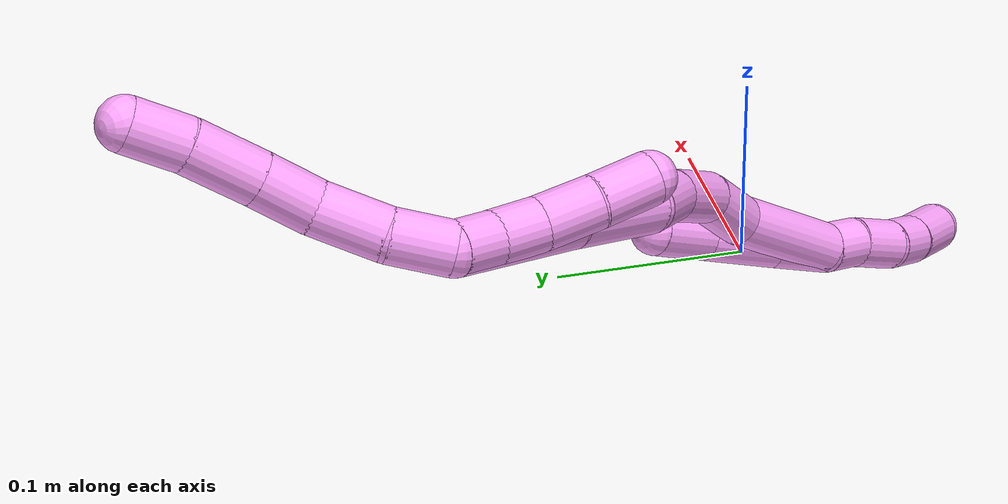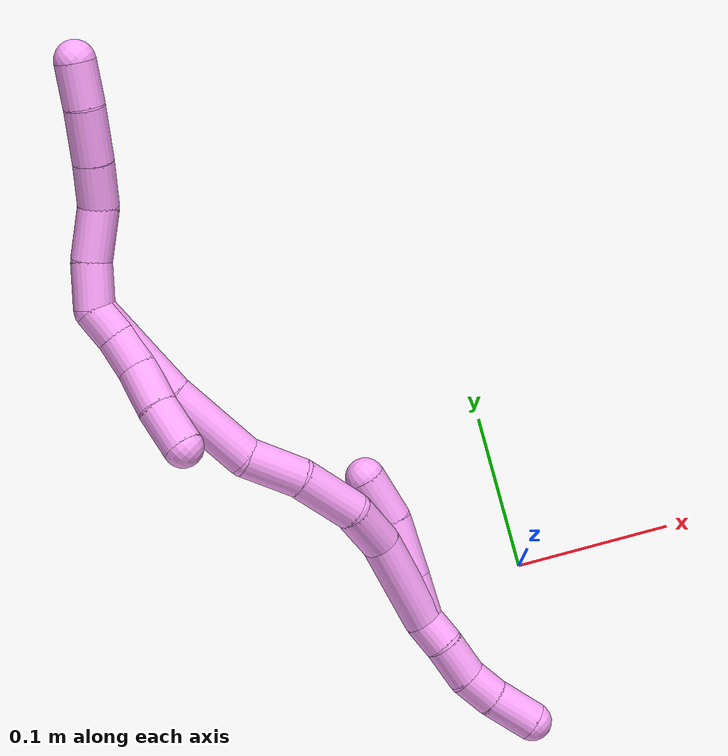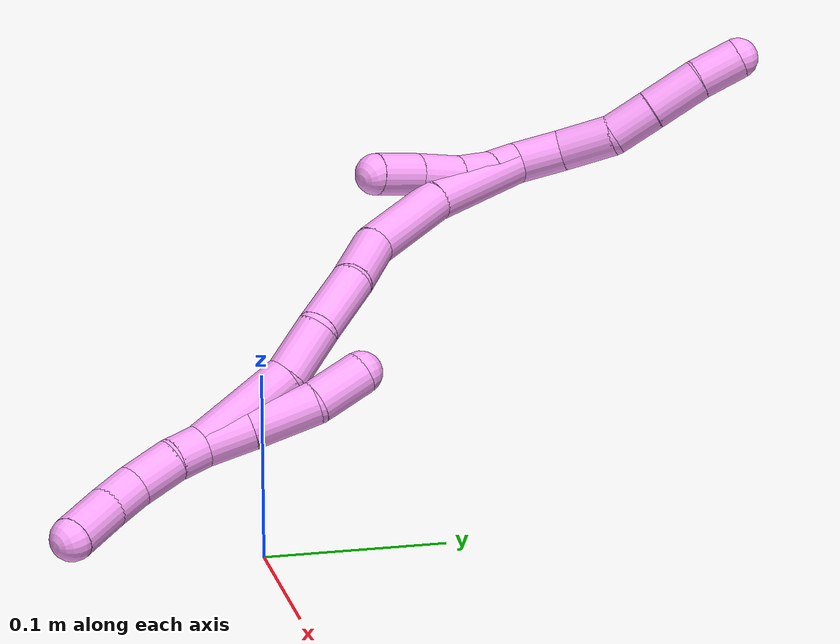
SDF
<sdf version="1.7">
 <world name="default">
  <model name="photoneo_s_sensor">
   <static>1</static>
   <pose>0 0 2 1.57079 1.57079 3.14159</pose>
   <link name="link">
    <inertial><mass>0.1</mass></inertial>
    <sensor name="sensor" type="depth">
     <update_rate>30</update_rate>
     <camera>
      <horizontal_fov>1.22</horizontal_fov>
      <image><width>1920</width><height>1200</height><format>B8G8R8</format></image>
      <clip><near>0.1</near><far>4</far></clip>
      <depth_camera><output>points</output></depth_camera>
     </camera>
     <plugin name="camera_plugin" filename="libgazebo_ros_depth_camera.so">
      <baseline>0.2</baseline>
      <alwaysOn>1</alwaysOn>
      <updateRate>0.0</updateRate>
      <cameraName>camera_ir</cameraName>
      <imageTopicName>/camera/color/image_raw</imageTopicName>
      <cameraInfoTopicName>/camera/color/camera_info</cameraInfoTopicName>
      <depthImageTopicName>/camera/depth/image_raw</depthImageTopicName>
      <depthImageCameraInfoTopicName>/camera/depth/camera_info</depthImageCameraInfoTopicName>
      <pointCloudTopicName>/camera/depth/points</pointCloudTopicName>
      <frameName>fr_optical</frameName>
      <pointCloudCutoff>0.1</pointCloudCutoff>
      <pointCloudCutoffMax>2.0</pointCloudCutoffMax>
      <distortionK1>0</distortionK1>
      <distortionK2>0</distortionK2>
      <distortionK3>0</distortionK3>
      <distortionT1>0</distortionT1>
      <distortionT2>0</distortionT2>
      <CxPrime>0</CxPrime>
      <Cx>0</Cx>
      <Cy>0</Cy>
      <focalLength>0</focalLength>
      <hackBaseline>0</hackBaseline>
     </plugin>
    </sensor>
   </link>
  </model>
  <model name="bin">
   <static>1</static>
   <link name="bottom">
    <collision name="collision-bottom">
     <pose>0 0 -0.01 0 -0 0</pose>
     <geometry><box><size>0.8 0.6 0.02</size></box></geometry>
     <surface>
      <friction><ode><mu>100</mu><mu2>100</mu2></ode></friction>
      <contact><collide_bitmask>65535</collide_bitmask></contact>
     </surface>
    </collision>
   </link>
   <link name="west_wall">
    <collision name="collision-west_wall">
     <pose>-0.41 0 0.1 0 -0 0</pose>
     <geometry><box><size>0.02 0.6 0.2</size></box></geometry>
     <surface>
      <friction><ode><mu>100</mu><mu2>100</mu2></ode></friction>
      <contact><collide_bitmask>65535</collide_bitmask></contact>
     </surface>
    </collision>
   </link>
   <link name="east_wall">
    <collision name="collision-east_wall">
     <pose>0.41 0 0.1 0 -0 0</pose>
     <geometry><box><size>0.02 0.6 0.2</size></box></geometry>
     <surface>
      <friction><ode><mu>100</mu><mu2>100</mu2></ode></friction>
      <contact><collide_bitmask>65535</collide_bitmask></contact>
     </surface>
    </collision>
   </link>
   <link name="south_wall">
    <collision name="collision-south_wall">
     <pose>0 -0.31 0.1 0 -0 0</pose>
     <geometry><box><size>0.8 0.02 0.2</size></box></geometry>
     <surface>
      <friction><ode><mu>100</mu><mu2>100</mu2></ode></friction>
      <contact><collide_bitmask>65535</collide_bitmask></contact>
     </surface>
    </collision>
   </link>
   <link name="north_wall">
    <collision name="collision-north_wall">
     <pose>0 0.31 0.1 0 -0 0</pose>
     <geometry><box><size>0.8 0.02 0.2</size></box></geometry>
     <surface>
      <friction><ode><mu>100</mu><mu2>100</mu2></ode></friction>
      <contact><collide_bitmask>65535</collide_bitmask></contact>
     </surface>
    </collision>
   </link>
  </model>
  <model name="4">
   <static>0</static>
   <link name="4">
    <collision name="collision-cylinder-e_1_2_8">
     <pose>-0.008787 -0.003931 0.010672 0.352949 -0.657804 -0.121577</pose>
     <geometry><cylinder><radius>0.0125</radius><length>0.028744</length></cylinder></geometry>
     <surface>
      <friction><ode><mu>1.16</mu><mu2>1.16</mu2><slip1>0</slip1><slip2>0</slip2></ode></friction>
      <contact><ode><kp>1e+06</kp><kd>1</kd><max_vel>0</max_vel><min_depth>0.001</min_depth></ode></contact>
     </surface>
    </collision>
    <visual name="visual-cylinder-e_1_2_8">
     <pose>-0.008787 -0.003931 0.010672 0.352949 -0.657804 -0.121577</pose>
     <geometry><cylinder><radius>0.0125</radius><length>0.028744</length></cylinder></geometry>
     <material><ambient>1 0.65098 0.996078 1</ambient></material>
    </visual>
    <collision name="collision-cylinder-e_2_8_9">
     <pose>-0.029981 -0.012281 0.031129 0.424187 -0.857465 -0.196219</pose>
     <geometry><cylinder><radius>0.0125</radius><length>0.032816</length></cylinder></geometry>
     <surface>
      <friction><ode><mu>1.16</mu><mu2>1.16</mu2><slip1>0</slip1><slip2>0</slip2></ode></friction>
      <contact><ode><kp>1e+06</kp><kd>1</kd><max_vel>0</max_vel><min_depth>0.001</min_depth></ode></contact>
     </surface>
    </collision>
    <visual name="visual-cylinder-e_2_8_9">
     <pose>-0.029981 -0.012281 0.031129 0.424187 -0.857465 -0.196219</pose>
     <geometry><cylinder><radius>0.0125</radius><length>0.032816</length></cylinder></geometry>
     <material><ambient>1 0.65098 0.996078 1</ambient></material>
    </visual>
    <collision name="collision-cylinder-e_3_9_10">
     <pose>-0.051906 -0.016356 0.050931 -0.034395 -0.759549 0.01373</pose>
     <geometry><cylinder><radius>0.0125</radius><length>0.027645</length></cylinder></geometry>
     <surface>
      <friction><ode><mu>1.16</mu><mu2>1.16</mu2><slip1>0</slip1><slip2>0</slip2></ode></friction>
      <contact><ode><kp>1e+06</kp><kd>1</kd><max_vel>0</max_vel><min_depth>0.001</min_depth></ode></contact>
     </surface>
    </collision>
    <visual name="visual-cylinder-e_3_9_10">
     <pose>-0.051906 -0.016356 0.050931 -0.034395 -0.759549 0.01373</pose>
     <geometry><cylinder><radius>0.0125</radius><length>0.027645</length></cylinder></geometry>
     <material><ambient>1 0.65098 0.996078 1</ambient></material>
    </visual>
    <collision name="collision-cylinder-e_4_10_11">
     <pose>-0.072446 -0.015455 0.073601 -0.043896 -0.716123 0.016428</pose>
     <geometry><cylinder><radius>0.0125</radius><length>0.033578</length></cylinder></geometry>
     <surface>
      <friction><ode><mu>1.16</mu><mu2>1.16</mu2><slip1>0</slip1><slip2>0</slip2></ode></friction>
      <contact><ode><kp>1e+06</kp><kd>1</kd><max_vel>0</max_vel><min_depth>0.001</min_depth></ode></contact>
     </surface>
    </collision>
    <visual name="visual-cylinder-e_4_10_11">
     <pose>-0.072446 -0.015455 0.073601 -0.043896 -0.716123 0.016428</pose>
     <geometry><cylinder><radius>0.0125</radius><length>0.033578</length></cylinder></geometry>
     <material><ambient>1 0.65098 0.996078 1</ambient></material>
    </visual>
    <collision name="collision-cylinder-e_5_11_6">
     <pose>-0.09155 -0.0156 0.09718 0.064054 -0.635931 -0.021089</pose>
     <geometry><cylinder><radius>0.0125</radius><length>0.027218</length></cylinder></geometry>
     <surface>
      <friction><ode><mu>1.16</mu><mu2>1.16</mu2><slip1>0</slip1><slip2>0</slip2></ode></friction>
      <contact><ode><kp>1e+06</kp><kd>1</kd><max_vel>0</max_vel><min_depth>0.001</min_depth></ode></contact>
     </surface>
    </collision>
    <visual name="visual-cylinder-e_5_11_6">
     <pose>-0.09155 -0.0156 0.09718 0.064054 -0.635931 -0.021089</pose>
     <geometry><cylinder><radius>0.0125</radius><length>0.027218</length></cylinder></geometry>
     <material><ambient>1 0.65098 0.996078 1</ambient></material>
    </visual>
    <collision name="collision-cylinder-e_1_2_12">
     <pose>0.000492 0.001132 -0.010411 -3.03328 0.046934 -0.817215</pose>
     <geometry><cylinder><radius>0.0125</radius><length>0.020967</length></cylinder></geometry>
     <surface>
      <friction><ode><mu>1.16</mu><mu2>1.16</mu2><slip1>0</slip1><slip2>0</slip2></ode></friction>
      <contact><ode><kp>1e+06</kp><kd>1</kd><max_vel>0</max_vel><min_depth>0.001</min_depth></ode></contact>
     </surface>
    </collision>
    <visual name="visual-cylinder-e_1_2_12">
     <pose>0.000492 0.001132 -0.010411 -3.03328 0.046934 -0.817215</pose>
     <geometry><cylinder><radius>0.0125</radius><length>0.020967</length></cylinder></geometry>
     <material><ambient>1 0.65098 0.996078 1</ambient></material>
    </visual>
    <collision name="collision-cylinder-e_2_12_13">
     <pose>0.001985 0.005463 -0.031895 -2.86037 0.086656 -0.594443</pose>
     <geometry><cylinder><radius>0.0125</radius><length>0.023138</length></cylinder></geometry>
     <surface>
      <friction><ode><mu>1.16</mu><mu2>1.16</mu2><slip1>0</slip1><slip2>0</slip2></ode></friction>
      <contact><ode><kp>1e+06</kp><kd>1</kd><max_vel>0</max_vel><min_depth>0.001</min_depth></ode></contact>
     </surface>
    </collision>
    <visual name="visual-cylinder-e_2_12_13">
     <pose>0.001985 0.005463 -0.031895 -2.86037 0.086656 -0.594443</pose>
     <geometry><cylinder><radius>0.0125</radius><length>0.023138</length></cylinder></geometry>
     <material><ambient>1 0.65098 0.996078 1</ambient></material>
    </visual>
    <collision name="collision-cylinder-e_3_13_14">
     <pose>0.004091 0.014857 -0.055277 -2.6753 0.080005 -0.333957</pose>
     <geometry><cylinder><radius>0.0125</radius><length>0.027649</length></cylinder></geometry>
     <surface>
      <friction><ode><mu>1.16</mu><mu2>1.16</mu2><slip1>0</slip1><slip2>0</slip2></ode></friction>
      <contact><ode><kp>1e+06</kp><kd>1</kd><max_vel>0</max_vel><min_depth>0.001</min_depth></ode></contact>
     </surface>
    </collision>
    <visual name="visual-cylinder-e_3_13_14">
     <pose>0.004091 0.014857 -0.055277 -2.6753 0.080005 -0.333957</pose>
     <geometry><cylinder><radius>0.0125</radius><length>0.027649</length></cylinder></geometry>
     <material><ambient>1 0.65098 0.996078 1</ambient></material>
    </visual>
    <collision name="collision-cylinder-e_4_14_5">
     <pose>0.005441 0.0263 -0.080695 -2.76079 0.017351 -0.089967</pose>
     <geometry><cylinder><radius>0.0125</radius><length>0.028245</length></cylinder></geometry>
     <surface>
      <friction><ode><mu>1.16</mu><mu2>1.16</mu2><slip1>0</slip1><slip2>0</slip2></ode></friction>
      <contact><ode><kp>1e+06</kp><kd>1</kd><max_vel>0</max_vel><min_depth>0.001</min_depth></ode></contact>
     </surface>
    </collision>
    <visual name="visual-cylinder-e_4_14_5">
     <pose>0.005441 0.0263 -0.080695 -2.76079 0.017351 -0.089967</pose>
     <geometry><cylinder><radius>0.0125</radius><length>0.028245</length></cylinder></geometry>
     <material><ambient>1 0.65098 0.996078 1</ambient></material>
    </visual>
    <collision name="collision-cylinder-e_1_2_15">
     <pose>0.001472 0.000804 -0.034224 -3.1181 0.042984 -2.14121</pose>
     <geometry><cylinder><radius>0.0125</radius><length>0.06853</length></cylinder></geometry>
     <surface>
      <friction><ode><mu>1.16</mu><mu2>1.16</mu2><slip1>0</slip1><slip2>0</slip2></ode></friction>
      <contact><ode><kp>1e+06</kp><kd>1</kd><max_vel>0</max_vel><min_depth>0.001</min_depth></ode></contact>
     </surface>
    </collision>
    <visual name="visual-cylinder-e_1_2_15">
     <pose>0.001472 0.000804 -0.034224 -3.1181 0.042984 -2.14121</pose>
     <geometry><cylinder><radius>0.0125</radius><length>0.06853</length></cylinder></geometry>
     <material><ambient>1 0.65098 0.996078 1</ambient></material>
    </visual>
    <collision name="collision-cylinder-e_2_15_16">
     <pose>0.00294 -0.002412 -0.097101 3.00219 -0.000151 -0.002168</pose>
     <geometry><cylinder><radius>0.0125</radius><length>0.057867</length></cylinder></geometry>
     <surface>
      <friction><ode><mu>1.16</mu><mu2>1.16</mu2><slip1>0</slip1><slip2>0</slip2></ode></friction>
      <contact><ode><kp>1e+06</kp><kd>1</kd><max_vel>0</max_vel><min_depth>0.001</min_depth></ode></contact>
     </surface>
    </collision>
    <visual name="visual-cylinder-e_2_15_16">
     <pose>0.00294 -0.002412 -0.097101 3.00219 -0.000151 -0.002168</pose>
     <geometry><cylinder><radius>0.0125</radius><length>0.057867</length></cylinder></geometry>
     <material><ambient>1 0.65098 0.996078 1</ambient></material>
    </visual>
    <collision name="collision-cylinder-e_3_16_17">
     <pose>-0.00133 -0.013373 -0.142373 2.74599 -0.232595 -1.05549</pose>
     <geometry><cylinder><radius>0.0125</radius><length>0.037018</length></cylinder></geometry>
     <surface>
      <friction><ode><mu>1.16</mu><mu2>1.16</mu2><slip1>0</slip1><slip2>0</slip2></ode></friction>
      <contact><ode><kp>1e+06</kp><kd>1</kd><max_vel>0</max_vel><min_depth>0.001</min_depth></ode></contact>
     </surface>
    </collision>
    <visual name="visual-cylinder-e_3_16_17">
     <pose>-0.00133 -0.013373 -0.142373 2.74599 -0.232595 -1.05549</pose>
     <geometry><cylinder><radius>0.0125</radius><length>0.037018</length></cylinder></geometry>
     <material><ambient>1 0.65098 0.996078 1</ambient></material>
    </visual>
    <collision name="collision-cylinder-e_4_17_18">
     <pose>-0.005914 -0.027971 -0.17813 2.76098 -0.015389 -0.079847</pose>
     <geometry><cylinder><radius>0.0125</radius><length>0.041229</length></cylinder></geometry>
     <surface>
      <friction><ode><mu>1.16</mu><mu2>1.16</mu2><slip1>0</slip1><slip2>0</slip2></ode></friction>
      <contact><ode><kp>1e+06</kp><kd>1</kd><max_vel>0</max_vel><min_depth>0.001</min_depth></ode></contact>
     </surface>
    </collision>
    <visual name="visual-cylinder-e_4_17_18">
     <pose>-0.005914 -0.027971 -0.17813 2.76098 -0.015389 -0.079847</pose>
     <geometry><cylinder><radius>0.0125</radius><length>0.041229</length></cylinder></geometry>
     <material><ambient>1 0.65098 0.996078 1</ambient></material>
    </visual>
    <collision name="collision-cylinder-e_5_18_19">
     <pose>-0.001154 -0.04289 -0.211343 2.66532 0.310194 1.14444</pose>
     <geometry><cylinder><radius>0.0125</radius><length>0.033265</length></cylinder></geometry>
     <surface>
      <friction><ode><mu>1.16</mu><mu2>1.16</mu2><slip1>0</slip1><slip2>0</slip2></ode></friction>
      <contact><ode><kp>1e+06</kp><kd>1</kd><max_vel>0</max_vel><min_depth>0.001</min_depth></ode></contact>
     </surface>
    </collision>
    <visual name="visual-cylinder-e_5_18_19">
     <pose>-0.001154 -0.04289 -0.211343 2.66532 0.310194 1.14444</pose>
     <geometry><cylinder><radius>0.0125</radius><length>0.033265</length></cylinder></geometry>
     <material><ambient>1 0.65098 0.996078 1</ambient></material>
    </visual>
    <collision name="collision-cylinder-e_6_19_1">
     <pose>0.015734 -0.055204 -0.253682 2.96468 0.390285 2.29807</pose>
     <geometry><cylinder><radius>0.0125</radius><length>0.06209</length></cylinder></geometry>
     <surface>
      <friction><ode><mu>1.16</mu><mu2>1.16</mu2><slip1>0</slip1><slip2>0</slip2></ode></friction>
      <contact><ode><kp>1e+06</kp><kd>1</kd><max_vel>0</max_vel><min_depth>0.001</min_depth></ode></contact>
     </surface>
    </collision>
    <visual name="visual-cylinder-e_6_19_1">
     <pose>0.015734 -0.055204 -0.253682 2.96468 0.390285 2.29807</pose>
     <geometry><cylinder><radius>0.0125</radius><length>0.06209</length></cylinder></geometry>
     <material><ambient>1 0.65098 0.996078 1</ambient></material>
    </visual>
    <collision name="collision-cylinder-e_1_1_20">
     <pose>0.028441 -0.059897 -0.291955 -3.10571 0.089213 -2.37723</pose>
     <geometry><cylinder><radius>0.0125</radius><length>0.020116</length></cylinder></geometry>
     <surface>
      <friction><ode><mu>1.16</mu><mu2>1.16</mu2><slip1>0</slip1><slip2>0</slip2></ode></friction>
      <contact><ode><kp>1e+06</kp><kd>1</kd><max_vel>0</max_vel><min_depth>0.001</min_depth></ode></contact>
     </surface>
    </collision>
    <visual name="visual-cylinder-e_1_1_20">
     <pose>0.028441 -0.059897 -0.291955 -3.10571 0.089213 -2.37723</pose>
     <geometry><cylinder><radius>0.0125</radius><length>0.020116</length></cylinder></geometry>
     <material><ambient>1 0.65098 0.996078 1</ambient></material>
    </visual>
    <collision name="collision-cylinder-e_2_20_21">
     <pose>0.032455 -0.060623 -0.314984 3.0584 0.234305 2.46178</pose>
     <geometry><cylinder><radius>0.0125</radius><length>0.026859</length></cylinder></geometry>
     <surface>
      <friction><ode><mu>1.16</mu><mu2>1.16</mu2><slip1>0</slip1><slip2>0</slip2></ode></friction>
      <contact><ode><kp>1e+06</kp><kd>1</kd><max_vel>0</max_vel><min_depth>0.001</min_depth></ode></contact>
     </surface>
    </collision>
    <visual name="visual-cylinder-e_2_20_21">
     <pose>0.032455 -0.060623 -0.314984 3.0584 0.234305 2.46178</pose>
     <geometry><cylinder><radius>0.0125</radius><length>0.026859</length></cylinder></geometry>
     <material><ambient>1 0.65098 0.996078 1</ambient></material>
    </visual>
    <collision name="collision-cylinder-e_3_21_22">
     <pose>0.035403 -0.063555 -0.33893 2.97425 -0.01536 -0.18265</pose>
     <geometry><cylinder><radius>0.0125</radius><length>0.022169</length></cylinder></geometry>
     <surface>
      <friction><ode><mu>1.16</mu><mu2>1.16</mu2><slip1>0</slip1><slip2>0</slip2></ode></friction>
      <contact><ode><kp>1e+06</kp><kd>1</kd><max_vel>0</max_vel><min_depth>0.001</min_depth></ode></contact>
     </surface>
    </collision>
    <visual name="visual-cylinder-e_3_21_22">
     <pose>0.035403 -0.063555 -0.33893 2.97425 -0.01536 -0.18265</pose>
     <geometry><cylinder><radius>0.0125</radius><length>0.022169</length></cylinder></geometry>
     <material><ambient>1 0.65098 0.996078 1</ambient></material>
    </visual>
    <collision name="collision-cylinder-e_4_22_4">
     <pose>0.032999 -0.068324 -0.364841 2.9489 -0.145285 -1.29078</pose>
     <geometry><cylinder><radius>0.0125</radius><length>0.030856</length></cylinder></geometry>
     <surface>
      <friction><ode><mu>1.16</mu><mu2>1.16</mu2><slip1>0</slip1><slip2>0</slip2></ode></friction>
      <contact><ode><kp>1e+06</kp><kd>1</kd><max_vel>0</max_vel><min_depth>0.001</min_depth></ode></contact>
     </surface>
    </collision>
    <visual name="visual-cylinder-e_4_22_4">
     <pose>0.032999 -0.068324 -0.364841 2.9489 -0.145285 -1.29078</pose>
     <geometry><cylinder><radius>0.0125</radius><length>0.030856</length></cylinder></geometry>
     <material><ambient>1 0.65098 0.996078 1</ambient></material>
    </visual>
    <collision name="collision-cylinder-e_1_1_23">
     <pose>0.021334 -0.062774 -0.269229 0.195423 -0.446853 -0.044539</pose>
     <geometry><cylinder><radius>0.0125</radius><length>0.028747</length></cylinder></geometry>
     <surface>
      <friction><ode><mu>1.16</mu><mu2>1.16</mu2><slip1>0</slip1><slip2>0</slip2></ode></friction>
      <contact><ode><kp>1e+06</kp><kd>1</kd><max_vel>0</max_vel><min_depth>0.001</min_depth></ode></contact>
     </surface>
    </collision>
    <visual name="visual-cylinder-e_1_1_23">
     <pose>0.021334 -0.062774 -0.269229 0.195423 -0.446853 -0.044539</pose>
     <geometry><cylinder><radius>0.0125</radius><length>0.028747</length></cylinder></geometry>
     <material><ambient>1 0.65098 0.996078 1</ambient></material>
    </visual>
    <collision name="collision-cylinder-e_2_23_24">
     <pose>0.006785 -0.068237 -0.239308 0.169585 -0.445631 -0.038512</pose>
     <geometry><cylinder><radius>0.0125</radius><length>0.038688</length></cylinder></geometry>
     <surface>
      <friction><ode><mu>1.16</mu><mu2>1.16</mu2><slip1>0</slip1><slip2>0</slip2></ode></friction>
      <contact><ode><kp>1e+06</kp><kd>1</kd><max_vel>0</max_vel><min_depth>0.001</min_depth></ode></contact>
     </surface>
    </collision>
    <visual name="visual-cylinder-e_2_23_24">
     <pose>0.006785 -0.068237 -0.239308 0.169585 -0.445631 -0.038512</pose>
     <geometry><cylinder><radius>0.0125</radius><length>0.038688</length></cylinder></geometry>
     <material><ambient>1 0.65098 0.996078 1</ambient></material>
    </visual>
    <collision name="collision-cylinder-e_3_24_3">
     <pose>-0.006159 -0.070198 -0.206517 -0.063072 -0.286768 0.009109</pose>
     <geometry><cylinder><radius>0.0125</radius><length>0.032564</length></cylinder></geometry>
     <surface>
      <friction><ode><mu>1.16</mu><mu2>1.16</mu2><slip1>0</slip1><slip2>0</slip2></ode></friction>
      <contact><ode><kp>1e+06</kp><kd>1</kd><max_vel>0</max_vel><min_depth>0.001</min_depth></ode></contact>
     </surface>
    </collision>
    <visual name="visual-cylinder-e_3_24_3">
     <pose>-0.006159 -0.070198 -0.206517 -0.063072 -0.286768 0.009109</pose>
     <geometry><cylinder><radius>0.0125</radius><length>0.032564</length></cylinder></geometry>
     <material><ambient>1 0.65098 0.996078 1</ambient></material>
    </visual>
    <collision name="collision-sphere-3">
     <pose>-0.010764 -0.069214 -0.190931 0 -0 0</pose>
     <geometry><sphere><radius>0.0125</radius></sphere></geometry>
     <surface>
      <friction><ode><mu>1.16</mu><mu2>1.16</mu2><slip1>0</slip1><slip2>0</slip2></ode></friction>
      <contact><ode><kp>1e+06</kp><kd>1</kd><max_vel>0</max_vel><min_depth>0.001</min_depth></ode></contact>
     </surface>
    </collision>
    <visual name="visual-sphere-3">
     <pose>-0.010764 -0.069214 -0.190931 0 -0 0</pose>
     <geometry><sphere><radius>0.0125</radius></sphere></geometry>
     <material><ambient>1 0.65098 0.996078 1</ambient></material>
    </visual>
    <collision name="collision-sphere-24">
     <pose>-0.001553 -0.071183 -0.222104 0 -0 0</pose>
     <geometry><sphere><radius>0.0125</radius></sphere></geometry>
     <surface>
      <friction><ode><mu>1.16</mu><mu2>1.16</mu2><slip1>0</slip1><slip2>0</slip2></ode></friction>
      <contact><ode><kp>1e+06</kp><kd>1</kd><max_vel>0</max_vel><min_depth>0.001</min_depth></ode></contact>
     </surface>
    </collision>
    <visual name="visual-sphere-24">
     <pose>-0.001553 -0.071183 -0.222104 0 -0 0</pose>
     <geometry><sphere><radius>0.0125</radius></sphere></geometry>
     <material><ambient>1 0.65098 0.996078 1</ambient></material>
    </visual>
    <collision name="collision-sphere-23">
     <pose>0.015123 -0.065291 -0.256513 0 -0 0</pose>
     <geometry><sphere><radius>0.0125</radius></sphere></geometry>
     <surface>
      <friction><ode><mu>1.16</mu><mu2>1.16</mu2><slip1>0</slip1><slip2>0</slip2></ode></friction>
      <contact><ode><kp>1e+06</kp><kd>1</kd><max_vel>0</max_vel><min_depth>0.001</min_depth></ode></contact>
     </surface>
    </collision>
    <visual name="visual-sphere-23">
     <pose>0.015123 -0.065291 -0.256513 0 -0 0</pose>
     <geometry><sphere><radius>0.0125</radius></sphere></geometry>
     <material><ambient>1 0.65098 0.996078 1</ambient></material>
    </visual>
    <collision name="collision-sphere-4">
     <pose>0.030765 -0.071248 -0.379825 0 -0 0</pose>
     <geometry><sphere><radius>0.0125</radius></sphere></geometry>
     <surface>
      <friction><ode><mu>1.16</mu><mu2>1.16</mu2><slip1>0</slip1><slip2>0</slip2></ode></friction>
      <contact><ode><kp>1e+06</kp><kd>1</kd><max_vel>0</max_vel><min_depth>0.001</min_depth></ode></contact>
     </surface>
    </collision>
    <visual name="visual-sphere-4">
     <pose>0.030765 -0.071248 -0.379825 0 -0 0</pose>
     <geometry><sphere><radius>0.0125</radius></sphere></geometry>
     <material><ambient>1 0.65098 0.996078 1</ambient></material>
    </visual>
    <collision name="collision-sphere-22">
     <pose>0.035233 -0.065401 -0.349858 0 -0 0</pose>
     <geometry><sphere><radius>0.0125</radius></sphere></geometry>
     <surface>
      <friction><ode><mu>1.16</mu><mu2>1.16</mu2><slip1>0</slip1><slip2>0</slip2></ode></friction>
      <contact><ode><kp>1e+06</kp><kd>1</kd><max_vel>0</max_vel><min_depth>0.001</min_depth></ode></contact>
     </surface>
    </collision>
    <visual name="visual-sphere-22">
     <pose>0.035233 -0.065401 -0.349858 0 -0 0</pose>
     <geometry><sphere><radius>0.0125</radius></sphere></geometry>
     <material><ambient>1 0.65098 0.996078 1</ambient></material>
    </visual>
    <collision name="collision-sphere-21">
     <pose>0.035573 -0.061709 -0.328001 0 -0 0</pose>
     <geometry><sphere><radius>0.0125</radius></sphere></geometry>
     <surface>
      <friction><ode><mu>1.16</mu><mu2>1.16</mu2><slip1>0</slip1><slip2>0</slip2></ode></friction>
      <contact><ode><kp>1e+06</kp><kd>1</kd><max_vel>0</max_vel><min_depth>0.001</min_depth></ode></contact>
     </surface>
    </collision>
    <visual name="visual-sphere-21">
     <pose>0.035573 -0.061709 -0.328001 0 -0 0</pose>
     <geometry><sphere><radius>0.0125</radius></sphere></geometry>
     <material><ambient>1 0.65098 0.996078 1</ambient></material>
    </visual>
    <collision name="collision-sphere-20">
     <pose>0.029337 -0.059538 -0.301967 0 -0 0</pose>
     <geometry><sphere><radius>0.0125</radius></sphere></geometry>
     <surface>
      <friction><ode><mu>1.16</mu><mu2>1.16</mu2><slip1>0</slip1><slip2>0</slip2></ode></friction>
      <contact><ode><kp>1e+06</kp><kd>1</kd><max_vel>0</max_vel><min_depth>0.001</min_depth></ode></contact>
     </surface>
    </collision>
    <visual name="visual-sphere-20">
     <pose>0.029337 -0.059538 -0.301967 0 -0 0</pose>
     <geometry><sphere><radius>0.0125</radius></sphere></geometry>
     <material><ambient>1 0.65098 0.996078 1</ambient></material>
    </visual>
    <collision name="collision-sphere-6">
     <pose>-0.099632 -0.016301 0.108106 0 -0 0</pose>
     <geometry><sphere><radius>0.0125</radius></sphere></geometry>
     <surface>
      <friction><ode><mu>1.16</mu><mu2>1.16</mu2><slip1>0</slip1><slip2>0</slip2></ode></friction>
      <contact><ode><kp>1e+06</kp><kd>1</kd><max_vel>0</max_vel><min_depth>0.001</min_depth></ode></contact>
     </surface>
    </collision>
    <visual name="visual-sphere-6">
     <pose>-0.099632 -0.016301 0.108106 0 -0 0</pose>
     <geometry><sphere><radius>0.0125</radius></sphere></geometry>
     <material><ambient>1 0.65098 0.996078 1</ambient></material>
    </visual>
    <collision name="collision-sphere-11">
     <pose>-0.083467 -0.0149 0.086254 0 -0 0</pose>
     <geometry><sphere><radius>0.0125</radius></sphere></geometry>
     <surface>
      <friction><ode><mu>1.16</mu><mu2>1.16</mu2><slip1>0</slip1><slip2>0</slip2></ode></friction>
      <contact><ode><kp>1e+06</kp><kd>1</kd><max_vel>0</max_vel><min_depth>0.001</min_depth></ode></contact>
     </surface>
    </collision>
    <visual name="visual-sphere-11">
     <pose>-0.083467 -0.0149 0.086254 0 -0 0</pose>
     <geometry><sphere><radius>0.0125</radius></sphere></geometry>
     <material><ambient>1 0.65098 0.996078 1</ambient></material>
    </visual>
    <collision name="collision-sphere-10">
     <pose>-0.061425 -0.016011 0.060949 0 -0 0</pose>
     <geometry><sphere><radius>0.0125</radius></sphere></geometry>
     <surface>
      <friction><ode><mu>1.16</mu><mu2>1.16</mu2><slip1>0</slip1><slip2>0</slip2></ode></friction>
      <contact><ode><kp>1e+06</kp><kd>1</kd><max_vel>0</max_vel><min_depth>0.001</min_depth></ode></contact>
     </surface>
    </collision>
    <visual name="visual-sphere-10">
     <pose>-0.061425 -0.016011 0.060949 0 -0 0</pose>
     <geometry><sphere><radius>0.0125</radius></sphere></geometry>
     <material><ambient>1 0.65098 0.996078 1</ambient></material>
    </visual>
    <collision name="collision-sphere-9">
     <pose>-0.042388 -0.0167 0.040914 0 -0 0</pose>
     <geometry><sphere><radius>0.0125</radius></sphere></geometry>
     <surface>
      <friction><ode><mu>1.16</mu><mu2>1.16</mu2><slip1>0</slip1><slip2>0</slip2></ode></friction>
      <contact><ode><kp>1e+06</kp><kd>1</kd><max_vel>0</max_vel><min_depth>0.001</min_depth></ode></contact>
     </surface>
    </collision>
    <visual name="visual-sphere-9">
     <pose>-0.042388 -0.0167 0.040914 0 -0 0</pose>
     <geometry><sphere><radius>0.0125</radius></sphere></geometry>
     <material><ambient>1 0.65098 0.996078 1</ambient></material>
    </visual>
    <collision name="collision-sphere-2">
     <geometry><sphere><radius>0.0125</radius></sphere></geometry>
     <surface>
      <friction><ode><mu>1.16</mu><mu2>1.16</mu2><slip1>0</slip1><slip2>0</slip2></ode></friction>
      <contact><ode><kp>1e+06</kp><kd>1</kd><max_vel>0</max_vel><min_depth>0.001</min_depth></ode></contact>
     </surface>
    </collision>
    <visual name="visual-sphere-2">
     <geometry><sphere><radius>0.0125</radius></sphere></geometry>
     <material><ambient>1 0.65098 0.996078 1</ambient></material>
    </visual>
    <collision name="collision-sphere-19">
     <pose>0.003923 -0.050151 -0.22542 0 -0 0</pose>
     <geometry><sphere><radius>0.0125</radius></sphere></geometry>
     <surface>
      <friction><ode><mu>1.16</mu><mu2>1.16</mu2><slip1>0</slip1><slip2>0</slip2></ode></friction>
      <contact><ode><kp>1e+06</kp><kd>1</kd><max_vel>0</max_vel><min_depth>0.001</min_depth></ode></contact>
     </surface>
    </collision>
    <visual name="visual-sphere-19">
     <pose>0.003923 -0.050151 -0.22542 0 -0 0</pose>
     <geometry><sphere><radius>0.0125</radius></sphere></geometry>
     <material><ambient>1 0.65098 0.996078 1</ambient></material>
    </visual>
    <collision name="collision-sphere-8">
     <pose>-0.017573 -0.007863 0.021344 0 -0 0</pose>
     <geometry><sphere><radius>0.0125</radius></sphere></geometry>
     <surface>
      <friction><ode><mu>1.16</mu><mu2>1.16</mu2><slip1>0</slip1><slip2>0</slip2></ode></friction>
      <contact><ode><kp>1e+06</kp><kd>1</kd><max_vel>0</max_vel><min_depth>0.001</min_depth></ode></contact>
     </surface>
    </collision>
    <visual name="visual-sphere-8">
     <pose>-0.017573 -0.007863 0.021344 0 -0 0</pose>
     <geometry><sphere><radius>0.0125</radius></sphere></geometry>
     <material><ambient>1 0.65098 0.996078 1</ambient></material>
    </visual>
    <collision name="collision-sphere-12">
     <pose>0.000984 0.002264 -0.020822 0 -0 0</pose>
     <geometry><sphere><radius>0.0125</radius></sphere></geometry>
     <surface>
      <friction><ode><mu>1.16</mu><mu2>1.16</mu2><slip1>0</slip1><slip2>0</slip2></ode></friction>
      <contact><ode><kp>1e+06</kp><kd>1</kd><max_vel>0</max_vel><min_depth>0.001</min_depth></ode></contact>
     </surface>
    </collision>
    <visual name="visual-sphere-12">
     <pose>0.000984 0.002264 -0.020822 0 -0 0</pose>
     <geometry><sphere><radius>0.0125</radius></sphere></geometry>
     <material><ambient>1 0.65098 0.996078 1</ambient></material>
    </visual>
    <collision name="collision-sphere-13">
     <pose>0.002986 0.008662 -0.042968 0 -0 0</pose>
     <geometry><sphere><radius>0.0125</radius></sphere></geometry>
     <surface>
      <friction><ode><mu>1.16</mu><mu2>1.16</mu2><slip1>0</slip1><slip2>0</slip2></ode></friction>
      <contact><ode><kp>1e+06</kp><kd>1</kd><max_vel>0</max_vel><min_depth>0.001</min_depth></ode></contact>
     </surface>
    </collision>
    <visual name="visual-sphere-13">
     <pose>0.002986 0.008662 -0.042968 0 -0 0</pose>
     <geometry><sphere><radius>0.0125</radius></sphere></geometry>
     <material><ambient>1 0.65098 0.996078 1</ambient></material>
    </visual>
    <collision name="collision-sphere-14">
     <pose>0.005196 0.021052 -0.067586 0 -0 0</pose>
     <geometry><sphere><radius>0.0125</radius></sphere></geometry>
     <surface>
      <friction><ode><mu>1.16</mu><mu2>1.16</mu2><slip1>0</slip1><slip2>0</slip2></ode></friction>
      <contact><ode><kp>1e+06</kp><kd>1</kd><max_vel>0</max_vel><min_depth>0.001</min_depth></ode></contact>
     </surface>
    </collision>
    <visual name="visual-sphere-14">
     <pose>0.005196 0.021052 -0.067586 0 -0 0</pose>
     <geometry><sphere><radius>0.0125</radius></sphere></geometry>
     <material><ambient>1 0.65098 0.996078 1</ambient></material>
    </visual>
    <collision name="collision-sphere-5">
     <pose>0.005686 0.031548 -0.093804 0 -0 0</pose>
     <geometry><sphere><radius>0.0125</radius></sphere></geometry>
     <surface>
      <friction><ode><mu>1.16</mu><mu2>1.16</mu2><slip1>0</slip1><slip2>0</slip2></ode></friction>
      <contact><ode><kp>1e+06</kp><kd>1</kd><max_vel>0</max_vel><min_depth>0.001</min_depth></ode></contact>
     </surface>
    </collision>
    <visual name="visual-sphere-5">
     <pose>0.005686 0.031548 -0.093804 0 -0 0</pose>
     <geometry><sphere><radius>0.0125</radius></sphere></geometry>
     <material><ambient>1 0.65098 0.996078 1</ambient></material>
    </visual>
    <collision name="collision-sphere-15">
     <pose>0.002945 0.001609 -0.068448 0 -0 0</pose>
     <geometry><sphere><radius>0.0125</radius></sphere></geometry>
     <surface>
      <friction><ode><mu>1.16</mu><mu2>1.16</mu2><slip1>0</slip1><slip2>0</slip2></ode></friction>
      <contact><ode><kp>1e+06</kp><kd>1</kd><max_vel>0</max_vel><min_depth>0.001</min_depth></ode></contact>
     </surface>
    </collision>
    <visual name="visual-sphere-15">
     <pose>0.002945 0.001609 -0.068448 0 -0 0</pose>
     <geometry><sphere><radius>0.0125</radius></sphere></geometry>
     <material><ambient>1 0.65098 0.996078 1</ambient></material>
    </visual>
    <collision name="collision-sphere-16">
     <pose>0.002936 -0.006432 -0.125754 0 -0 0</pose>
     <geometry><sphere><radius>0.0125</radius></sphere></geometry>
     <surface>
      <friction><ode><mu>1.16</mu><mu2>1.16</mu2><slip1>0</slip1><slip2>0</slip2></ode></friction>
      <contact><ode><kp>1e+06</kp><kd>1</kd><max_vel>0</max_vel><min_depth>0.001</min_depth></ode></contact>
     </surface>
    </collision>
    <visual name="visual-sphere-16">
     <pose>0.002936 -0.006432 -0.125754 0 -0 0</pose>
     <geometry><sphere><radius>0.0125</radius></sphere></geometry>
     <material><ambient>1 0.65098 0.996078 1</ambient></material>
    </visual>
    <collision name="collision-sphere-17">
     <pose>-0.005597 -0.020313 -0.158993 0 -0 0</pose>
     <geometry><sphere><radius>0.0125</radius></sphere></geometry>
     <surface>
      <friction><ode><mu>1.16</mu><mu2>1.16</mu2><slip1>0</slip1><slip2>0</slip2></ode></friction>
      <contact><ode><kp>1e+06</kp><kd>1</kd><max_vel>0</max_vel><min_depth>0.001</min_depth></ode></contact>
     </surface>
    </collision>
    <visual name="visual-sphere-17">
     <pose>-0.005597 -0.020313 -0.158993 0 -0 0</pose>
     <geometry><sphere><radius>0.0125</radius></sphere></geometry>
     <material><ambient>1 0.65098 0.996078 1</ambient></material>
    </visual>
    <collision name="collision-sphere-18">
     <pose>-0.006231 -0.035628 -0.197267 0 -0 0</pose>
     <geometry><sphere><radius>0.0125</radius></sphere></geometry>
     <surface>
      <friction><ode><mu>1.16</mu><mu2>1.16</mu2><slip1>0</slip1><slip2>0</slip2></ode></friction>
      <contact><ode><kp>1e+06</kp><kd>1</kd><max_vel>0</max_vel><min_depth>0.001</min_depth></ode></contact>
     </surface>
    </collision>
    <visual name="visual-sphere-18">
     <pose>-0.006231 -0.035628 -0.197267 0 -0 0</pose>
     <geometry><sphere><radius>0.0125</radius></sphere></geometry>
     <material><ambient>1 0.65098 0.996078 1</ambient></material>
    </visual>
    <collision name="collision-sphere-1">
     <pose>0.027545 -0.060257 -0.281944 0 -0 0</pose>
     <geometry><sphere><radius>0.0125</radius></sphere></geometry>
     <surface>
      <friction><ode><mu>1.16</mu><mu2>1.16</mu2><slip1>0</slip1><slip2>0</slip2></ode></friction>
      <contact><ode><kp>1e+06</kp><kd>1</kd><max_vel>0</max_vel><min_depth>0.001</min_depth></ode></contact>
     </surface>
    </collision>
    <visual name="visual-sphere-1">
     <pose>0.027545 -0.060257 -0.281944 0 -0 0</pose>
     <geometry><sphere><radius>0.0125</radius></sphere></geometry>
     <material><ambient>1 0.65098 0.996078 1</ambient></material>
    </visual>
    <inertial>
     <pose>-0.003245 -0.027034 -0.129466 0 -0 0</pose>
     <mass>0.75</mass>
     <inertia><ixx>7e-06</ixx><ixy>0</ixy><ixz>0</ixz><iyy>3e-06</iyy><iyz>0</iyz><izz>-1e-06</izz></inertia>
    </inertial>
   </link>
   <pose>-0.215871 0.197418 0.165358 1.32072 0.577027 -2.73487</pose>
  </model>
 </world>
</sdf>
